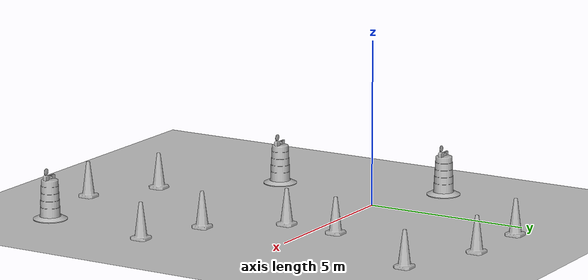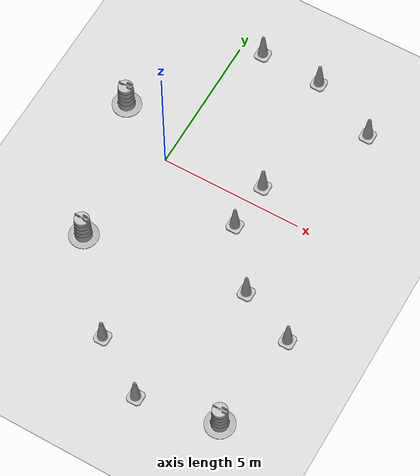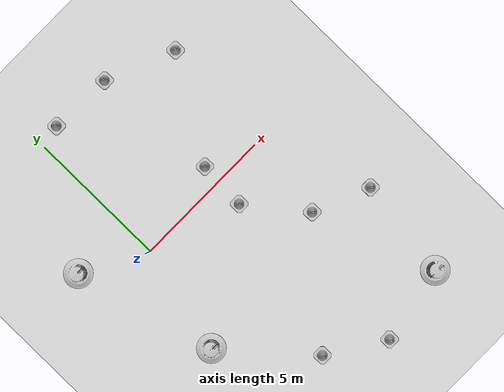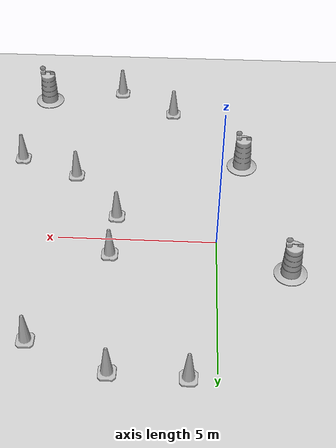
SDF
<sdf version="1.7">
 <world name="default">
  <light name="sun" type="directional">
   <pose>0 0 10 0 -0 0</pose>
   <diffuse>0.8 0.8 0.8 1</diffuse>
   <specular>0.2 0.2 0.2 1</specular>
   <attenuation>
    <range>1000</range>
    <constant>0.9</constant>
    <linear>0.01</linear>
    <quadratic>0.001</quadratic>
   </attenuation>
   <direction>-0.5 0.1 -0.9</direction>
   <spot><inner_angle>0</inner_angle><outer_angle>0</outer_angle><falloff>0</falloff></spot>
  </light>
  <model name="ground_plane">
   <static>1</static>
   <link name="link">
    <collision name="collision">
     <geometry><plane><normal>0 0 1</normal><size>100 100</size></plane></geometry>
     <surface>
      <contact><collide_bitmask>65535</collide_bitmask></contact>
      <friction><ode><mu>100</mu><mu2>50</mu2></ode></friction>
     </surface>
    </collision>
    <visual name="visual">
     <cast_shadows>0</cast_shadows>
     <geometry><plane><normal>0 0 1</normal><size>100 100</size></plane></geometry>
     <material>
      <script><uri>file://media/materials/scripts/gazebo.material</uri><name>Gazebo/Grey</name></script>
     </material>
    </visual>
   </link>
  </model>
  <gravity>0 0 -9.8</gravity>
  <magnetic_field>6e-06 2.3e-05 -4.2e-05</magnetic_field>
  <atmosphere type="adiabatic"/>
  <physics type="ode">
   <max_step_size>0.001</max_step_size>
   <real_time_factor>1</real_time_factor>
   <real_time_update_rate>1000</real_time_update_rate>
  </physics>
  <scene><ambient>0.4 0.4 0.4 1</ambient><background>0.7 0.7 0.7 1</background><shadows>1</shadows></scene>
  <audio><device>default</device></audio>
  <spherical_coordinates>
   <surface_model>EARTH_WGS84</surface_model>
   <latitude_deg>0</latitude_deg>
   <longitude_deg>0</longitude_deg>
   <elevation>0</elevation>
   <heading_deg>0</heading_deg>
  </spherical_coordinates>
  <model name="Construction Barrel">
   <link name="link">
    <inertial>
     <pose>0 0 0.4 0 -0 0</pose>
     <mass>500</mass>
     <inertia><ixx>51.2096</ixx><iyy>51.2096</iyy><izz>25</izz><ixy>0</ixy><ixz>0</ixz><iyz>0</iyz></inertia>
    </inertial>
    <collision name="collision">
     <geometry><mesh><uri>model://construction_barrel/meshes/construction_barrel.dae</uri></mesh></geometry>
    </collision>
    <visual name="visual">
     <geometry><mesh><uri>model://construction_barrel/meshes/construction_barrel.dae</uri></mesh></geometry>
    </visual>
   </link>
   <pose>-2.22857 1.21232 -0 0 -0 -2.2e-05</pose>
  </model>
  <model name="Construction Barrel_0">
   <link name="link">
    <inertial>
     <pose>0 0 0.4 0 -0 0</pose>
     <mass>500</mass>
     <inertia><ixx>51.2096</ixx><iyy>51.2096</iyy><izz>25</izz><ixy>0</ixy><ixz>0</ixz><iyz>0</iyz></inertia>
    </inertial>
    <collision name="collision">
     <geometry><mesh><uri>model://construction_barrel/meshes/construction_barrel.dae</uri></mesh></geometry>
    </collision>
    <visual name="visual">
     <geometry><mesh><uri>model://construction_barrel/meshes/construction_barrel.dae</uri></mesh></geometry>
    </visual>
   </link>
   <pose>-0.89463 -3.73602 -0 0 -0 -2.1e-05</pose>
  </model>
  <model name="Construction Cone">
   <link name="link">
    <collision name="collision">
     <geometry>
      <mesh><scale>10 10 10</scale><uri>model://construction_cone/meshes/construction_cone.dae</uri></mesh>
     </geometry>
    </collision>
    <visual name="visual">
     <geometry>
      <mesh><scale>10 10 10</scale><uri>model://construction_cone/meshes/construction_cone.dae</uri></mesh>
     </geometry>
    </visual>
    <inertial>
     <inertia><ixx>1</ixx><ixy>0</ixy><ixz>0</ixz><iyy>1</iyy><iyz>0</iyz><izz>1</izz></inertia>
     <mass>1</mass>
    </inertial>
   </link>
   <pose>0.79888 5.19679 -0 0 -1e-06 0</pose>
  </model>
  <model name="Construction Cone_0">
   <link name="link">
    <collision name="collision">
     <geometry>
      <mesh><scale>10 10 10</scale><uri>model://construction_cone/meshes/construction_cone.dae</uri></mesh>
     </geometry>
    </collision>
    <visual name="visual">
     <geometry>
      <mesh><scale>10 10 10</scale><uri>model://construction_cone/meshes/construction_cone.dae</uri></mesh>
     </geometry>
    </visual>
    <inertial>
     <inertia><ixx>1</ixx><ixy>0</ixy><ixz>0</ixz><iyy>1</iyy><iyz>0</iyz><izz>1</izz></inertia>
     <mass>1</mass>
    </inertial>
   </link>
   <pose>3.01796 5.11799 -0 0 -0 0</pose>
  </model>
  <model name="Construction Cone_1">
   <link name="link">
    <collision name="collision">
     <geometry>
      <mesh><scale>10 10 10</scale><uri>model://construction_cone/meshes/construction_cone.dae</uri></mesh>
     </geometry>
    </collision>
    <visual name="visual">
     <geometry>
      <mesh><scale>10 10 10</scale><uri>model://construction_cone/meshes/construction_cone.dae</uri></mesh>
     </geometry>
    </visual>
    <inertial>
     <inertia><ixx>1</ixx><ixy>0</ixy><ixz>0</ixz><iyy>1</iyy><iyz>0</iyz><izz>1</izz></inertia>
     <mass>1</mass>
    </inertial>
   </link>
   <pose>5.41124 4.12757 -0 0 -1e-06 0</pose>
  </model>
  <model name="Construction Cone_2">
   <link name="link">
    <collision name="collision">
     <geometry>
      <mesh><scale>10 10 10</scale><uri>model://construction_cone/meshes/construction_cone.dae</uri></mesh>
     </geometry>
    </collision>
    <visual name="visual">
     <geometry>
      <mesh><scale>10 10 10</scale><uri>model://construction_cone/meshes/construction_cone.dae</uri></mesh>
     </geometry>
    </visual>
    <inertial>
     <inertia><ixx>1</ixx><ixy>0</ixy><ixz>0</ixz><iyy>1</iyy><iyz>0</iyz><izz>1</izz></inertia>
     <mass>1</mass>
    </inertial>
   </link>
   <pose>3.50969 -7.79981 -0 0 -1e-06 0</pose>
  </model>
  <model name="Construction Cone_3">
   <link name="link">
    <collision name="collision">
     <geometry>
      <mesh><scale>10 10 10</scale><uri>model://construction_cone/meshes/construction_cone.dae</uri></mesh>
     </geometry>
    </collision>
    <visual name="visual">
     <geometry>
      <mesh><scale>10 10 10</scale><uri>model://construction_cone/meshes/construction_cone.dae</uri></mesh>
     </geometry>
    </visual>
    <inertial>
     <inertia><ixx>1</ixx><ixy>0</ixy><ixz>0</ixz><iyy>1</iyy><iyz>0</iyz><izz>1</izz></inertia>
     <mass>1</mass>
    </inertial>
   </link>
   <pose>1.54945 -6.56271 -0 0 -1e-06 0</pose>
  </model>
  <model name="Construction Barrel_1">
   <link name="link">
    <inertial>
     <pose>0 0 0.4 0 -0 0</pose>
     <mass>500</mass>
     <inertia><ixx>51.2096</ixx><iyy>51.2096</iyy><izz>25</izz><ixy>0</ixy><ixz>0</ixz><iyz>0</iyz></inertia>
    </inertial>
    <collision name="collision">
     <geometry><mesh><uri>model://construction_barrel/meshes/construction_barrel.dae</uri></mesh></geometry>
    </collision>
    <visual name="visual">
     <geometry><mesh><uri>model://construction_barrel/meshes/construction_barrel.dae</uri></mesh></geometry>
    </visual>
   </link>
   <pose>6.2382 -7.26898 -1e-06 5e-06 -2e-06 -1.3e-05</pose>
  </model>
  <model name="Construction Cone_4">
   <link name="link">
    <collision name="collision">
     <geometry>
      <mesh><scale>10 10 10</scale><uri>model://construction_cone/meshes/construction_cone.dae</uri></mesh>
     </geometry>
    </collision>
    <visual name="visual">
     <geometry>
      <mesh><scale>10 10 10</scale><uri>model://construction_cone/meshes/construction_cone.dae</uri></mesh>
     </geometry>
    </visual>
    <inertial>
     <inertia><ixx>1</ixx><ixy>0</ixy><ixz>0</ixz><iyy>1</iyy><iyz>0</iyz><izz>1</izz></inertia>
     <mass>1</mass>
    </inertial>
   </link>
   <pose>3.3138 0.689695 -0 0 -1e-06 0</pose>
  </model>
  <model name="Construction Cone_5">
   <link name="link">
    <collision name="collision">
     <geometry>
      <mesh><scale>10 10 10</scale><uri>model://construction_cone/meshes/construction_cone.dae</uri></mesh>
     </geometry>
    </collision>
    <visual name="visual">
     <geometry>
      <mesh><scale>10 10 10</scale><uri>model://construction_cone/meshes/construction_cone.dae</uri></mesh>
     </geometry>
    </visual>
    <inertial>
     <inertia><ixx>1</ixx><ixy>0</ixy><ixz>0</ixz><iyy>1</iyy><iyz>0</iyz><izz>1</izz></inertia>
     <mass>1</mass>
    </inertial>
   </link>
   <pose>3.22038 -1.01072 -0 0 -1e-06 0</pose>
  </model>
  <model name="Construction Cone_6">
   <link name="link">
    <collision name="collision">
     <geometry>
      <mesh><scale>10 10 10</scale><uri>model://construction_cone/meshes/construction_cone.dae</uri></mesh>
     </geometry>
    </collision>
    <visual name="visual">
     <geometry>
      <mesh><scale>10 10 10</scale><uri>model://construction_cone/meshes/construction_cone.dae</uri></mesh>
     </geometry>
    </visual>
    <inertial>
     <inertia><ixx>1</ixx><ixy>0</ixy><ixz>0</ixz><iyy>1</iyy><iyz>0</iyz><izz>1</izz></inertia>
     <mass>1</mass>
    </inertial>
   </link>
   <pose>4.742 -2.9511 -0 0 -1e-06 0</pose>
  </model>
  <model name="Construction Cone_7">
   <link name="link">
    <collision name="collision">
     <geometry>
      <mesh><scale>10 10 10</scale><uri>model://construction_cone/meshes/construction_cone.dae</uri></mesh>
     </geometry>
    </collision>
    <visual name="visual">
     <geometry>
      <mesh><scale>10 10 10</scale><uri>model://construction_cone/meshes/construction_cone.dae</uri></mesh>
     </geometry>
    </visual>
    <inertial>
     <inertia><ixx>1</ixx><ixy>0</ixy><ixz>0</ixz><iyy>1</iyy><iyz>0</iyz><izz>1</izz></inertia>
     <mass>1</mass>
    </inertial>
   </link>
   <pose>6.70367 -3.76874 -0 0 -1e-06 0</pose>
  </model>
 </world>
</sdf>
